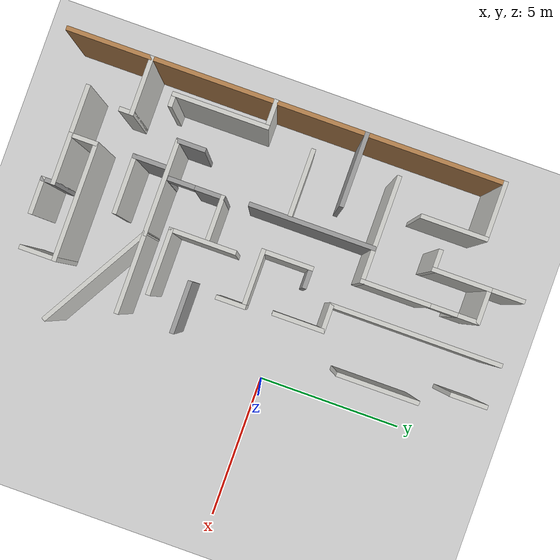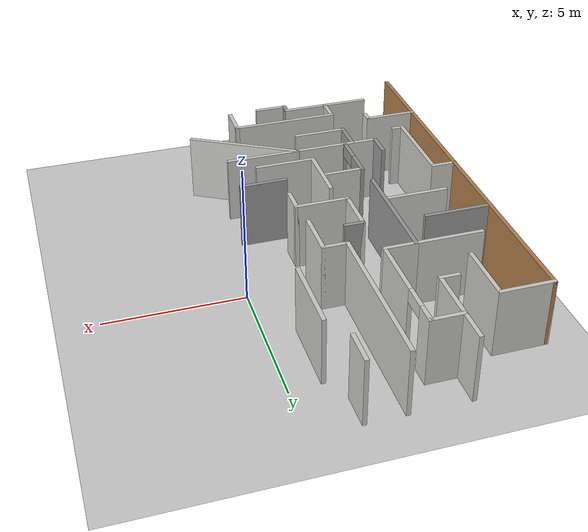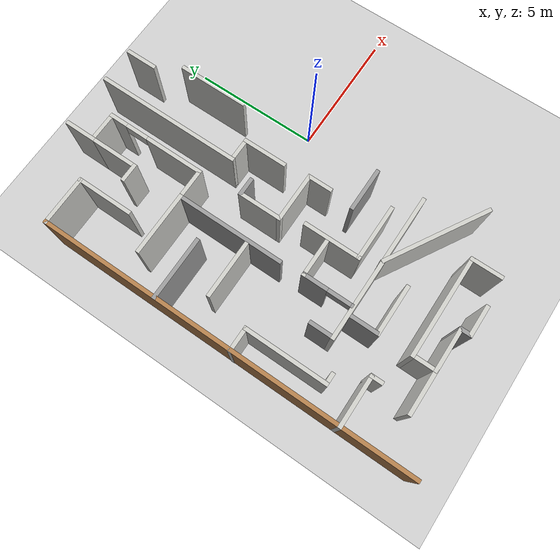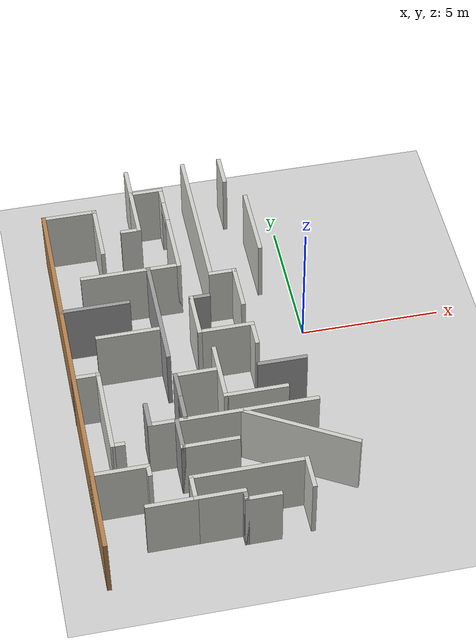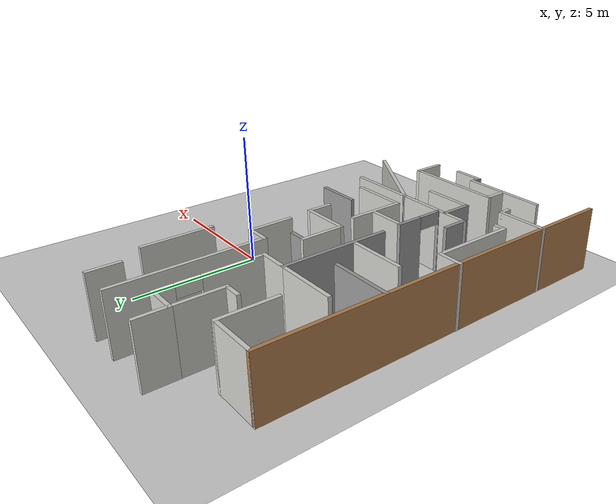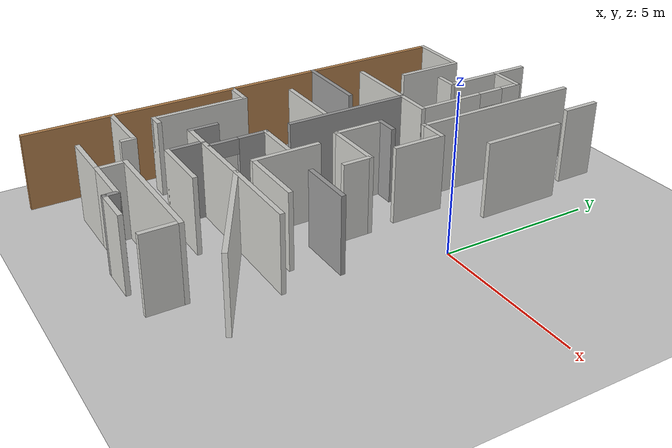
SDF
<sdf version="1.7">
 <world name="default">
  <model name="ground_plane">
   <static>1</static>
   <link name="link">
    <collision name="collision">
     <geometry><plane><normal>0 0 1</normal><size>100 100</size></plane></geometry>
     <surface>
      <contact><collide_bitmask>65535</collide_bitmask></contact>
      <friction><ode><mu>100</mu><mu2>50</mu2></ode></friction>
     </surface>
    </collision>
    <visual name="visual">
     <cast_shadows>0</cast_shadows>
     <geometry><plane><normal>0 0 1</normal><size>100 100</size></plane></geometry>
     <material>
      <script><uri>file://media/materials/scripts/gazebo.material</uri><name>Gazebo/Grey</name></script>
     </material>
    </visual>
   </link>
  </model>
  <model name="maze">
   <pose>-0.272391 -1.26791 0 0 -0 0</pose>
   <link name="Wall_10">
    <collision name="Wall_10_Collision">
     <geometry><box><size>2 0.15 2.5</size></box></geometry>
     <pose>0 0 1.25 0 -0 0</pose>
    </collision>
    <visual name="Wall_10_Visual">
     <pose>0 0 1.25 0 -0 0</pose>
     <geometry><box><size>2 0.15 2.5</size></box></geometry>
     <material>
      <script><uri>file://media/materials/scripts/gazebo.material</uri><name>Gazebo/CeilingTiled</name></script>
      <ambient>1 1 1 1</ambient>
     </material>
     <meta><layer>0</layer></meta>
    </visual>
    <pose>-7.369 6.425 0 0 -0 0</pose>
   </link>
   <link name="Wall_103">
    <collision name="Wall_103_Collision">
     <geometry><box><size>2.75 0.15 2.5</size></box></geometry>
     <pose>0 0 1.25 0 -0 0</pose>
    </collision>
    <visual name="Wall_103_Visual">
     <pose>0 0 1.25 0 -0 0</pose>
     <geometry><box><size>2.75 0.15 2.5</size></box></geometry>
     <material>
      <script><uri>file://media/materials/scripts/gazebo.material</uri><name>Gazebo/CeilingTiled</name></script>
      <ambient>1 1 1 1</ambient>
     </material>
     <meta><layer>0</layer></meta>
    </visual>
    <pose>-0.877462 4.79124 0 0 -0 -1.5708</pose>
   </link>
   <link name="Wall_11">
    <collision name="Wall_11_Collision">
     <geometry><box><size>2.25 0.15 2.5</size></box></geometry>
     <pose>0 0 1.25 0 -0 0</pose>
    </collision>
    <visual name="Wall_11_Visual">
     <pose>0 0 1.25 0 -0 0</pose>
     <geometry><box><size>2.25 0.15 2.5</size></box></geometry>
     <material>
      <script><uri>file://media/materials/scripts/gazebo.material</uri><name>Gazebo/CeilingTiled</name></script>
      <ambient>1 1 1 1</ambient>
     </material>
     <meta><layer>0</layer></meta>
    </visual>
    <pose>-6.444 5.375 0 0 -0 -1.5708</pose>
   </link>
   <link name="Wall_119">
    <collision name="Wall_119_Collision">
     <geometry><box><size>5.75 0.15 2.5</size></box></geometry>
     <pose>0 0 1.25 0 -0 0</pose>
    </collision>
    <visual name="Wall_119_Visual">
     <pose>0 0 1.25 0 -0 0</pose>
     <geometry><box><size>5.75 0.15 2.5</size></box></geometry>
     <material>
      <script><uri>file://media/materials/scripts/gazebo.material</uri><name>Gazebo/CeilingTiled</name></script>
      <ambient>1 1 1 1</ambient>
     </material>
     <meta><layer>0</layer></meta>
    </visual>
    <pose>-2.85397 5.35668 0 0 -0 -1.5708</pose>
   </link>
   <link name="Wall_120">
    <collision name="Wall_120_Collision">
     <geometry><box><size>1 0.15 2.5</size></box></geometry>
     <pose>0 0 1.25 0 -0 0</pose>
    </collision>
    <visual name="Wall_120_Visual">
     <pose>0 0 1.25 0 -0 0</pose>
     <geometry><box><size>1 0.15 2.5</size></box></geometry>
     <material>
      <script><uri>file://media/materials/scripts/gazebo.material</uri><name>Gazebo/CeilingTiled</name></script>
      <ambient>1 1 1 1</ambient>
     </material>
     <meta><layer>0</layer></meta>
    </visual>
    <pose>-2.42897 2.55668 0 0 -0 0</pose>
   </link>
   <link name="Wall_121">
    <collision name="Wall_121_Collision">
     <geometry><box><size>1.75 0.15 2.5</size></box></geometry>
     <pose>0 0 1.25 0 -0 0</pose>
    </collision>
    <visual name="Wall_121_Visual">
     <pose>0 0 1.25 0 -0 0</pose>
     <geometry><box><size>1.75 0.15 2.5</size></box></geometry>
     <material>
      <script><uri>file://media/materials/scripts/gazebo.material</uri><name>Gazebo/CeilingTiled</name></script>
      <ambient>1 1 1 1</ambient>
     </material>
     <meta><layer>0</layer></meta>
    </visual>
    <pose>-2.00397 1.75668 0 0 -0 -1.5708</pose>
   </link>
   <link name="Wall_123">
    <collision name="Wall_123_Collision">
     <geometry><box><size>1.25 0.15 2.5</size></box></geometry>
     <pose>0 0 1.25 0 -0 0</pose>
    </collision>
    <visual name="Wall_123_Visual">
     <pose>0 0 1.25 0 -0 0</pose>
     <geometry><box><size>1.25 0.15 2.5</size></box></geometry>
     <material>
      <script><uri>file://media/materials/scripts/gazebo.material</uri><name>Gazebo/CeilingTiled</name></script>
      <ambient>1 1 1 1</ambient>
     </material>
     <meta><layer>0</layer></meta>
    </visual>
    <pose>-1.47333 7.60546 0 0 -0 -1.5708</pose>
   </link>
   <link name="Wall_127">
    <collision name="Wall_127_Collision">
     <geometry><box><size>1.25 0.15 2.5</size></box></geometry>
     <pose>0 0 1.25 0 -0 0</pose>
    </collision>
    <visual name="Wall_127_Visual">
     <pose>0 0 1.25 0 -0 0</pose>
     <geometry><box><size>1.25 0.15 2.5</size></box></geometry>
     <material>
      <script><uri>file://media/materials/scripts/gazebo.material</uri><name>Gazebo/CeilingTiled</name></script>
      <ambient>1 1 1 1</ambient>
     </material>
     <meta><layer>0</layer></meta>
    </visual>
    <pose>-4.98611 7.61136 0 0 -0 -1.5708</pose>
   </link>
   <link name="Wall_128">
    <collision name="Wall_128_Collision">
     <geometry><box><size>1.25 0.15 2.5</size></box></geometry>
     <pose>0 0 1.25 0 -0 0</pose>
    </collision>
    <visual name="Wall_128_Visual">
     <pose>0 0 1.25 0 -0 0</pose>
     <geometry><box><size>1.25 0.15 2.5</size></box></geometry>
     <material>
      <script><uri>file://media/materials/scripts/gazebo.material</uri><name>Gazebo/CeilingTiled</name></script>
      <ambient>1 1 1 1</ambient>
     </material>
     <meta><layer>0</layer></meta>
    </visual>
    <pose>-4.43611 7.06136 0 0 -0 0</pose>
   </link>
   <link name="Wall_129">
    <pose>-3.88611 5.13636 0 0 -0 -1.5708</pose>
    <visual name="Wall_129_Visual_0">
     <pose>-1.62336 0 1.25 0 -0 0</pose>
     <geometry><box><size>0.753273 0.15 2.5</size></box></geometry>
     <material>
      <script><uri>file://media/materials/scripts/gazebo.material</uri><name>Gazebo/CeilingTiled</name></script>
      <ambient>1 1 1 1</ambient>
     </material>
     <meta><layer>0</layer></meta>
    </visual>
    <collision name="Wall_129_Collision_0">
     <geometry><box><size>0.753273 0.15 2.5</size></box></geometry>
     <pose>-1.62336 0 1.25 0 -0 0</pose>
    </collision>
    <visual name="Wall_129_Visual_1">
     <pose>0.826636 0 1.25 0 -0 0</pose>
     <geometry><box><size>2.34673 0.15 2.5</size></box></geometry>
     <material>
      <script><uri>file://media/materials/scripts/gazebo.material</uri><name>Gazebo/CeilingTiled</name></script>
      <ambient>1 1 1 1</ambient>
     </material>
     <meta><layer>0</layer></meta>
    </visual>
    <collision name="Wall_129_Collision_1">
     <geometry><box><size>2.34673 0.15 2.5</size></box></geometry>
     <pose>0.826636 0 1.25 0 -0 0</pose>
    </collision>
    <visual name="Wall_129_Visual_2">
     <pose>-0.796727 0 2.25 0 -0 0</pose>
     <geometry><box><size>0.9 0.15 0.5</size></box></geometry>
     <material>
      <script><uri>file://media/materials/scripts/gazebo.material</uri><name>Gazebo/CeilingTiled</name></script>
      <ambient>1 1 1 1</ambient>
     </material>
     <meta><layer>0</layer></meta>
    </visual>
    <collision name="Wall_129_Collision_2">
     <geometry><box><size>0.9 0.15 0.5</size></box></geometry>
     <pose>-0.796727 0 2.25 0 -0 0</pose>
    </collision>
   </link>
   <link name="Wall_130">
    <collision name="Wall_130_Collision">
     <geometry><box><size>1.25 0.15 2.5</size></box></geometry>
     <pose>0 0 1.25 0 -0 0</pose>
    </collision>
    <visual name="Wall_130_Visual">
     <pose>0 0 1.25 0 -0 0</pose>
     <geometry><box><size>1.25 0.15 2.5</size></box></geometry>
     <material>
      <script><uri>file://media/materials/scripts/gazebo.material</uri><name>Gazebo/CeilingTiled</name></script>
      <ambient>1 1 1 1</ambient>
     </material>
     <meta><layer>0</layer></meta>
    </visual>
    <pose>-4.43611 3.21136 0 0 -0 3.14159</pose>
   </link>
   <link name="Wall_131">
    <collision name="Wall_131_Collision">
     <geometry><box><size>4.25 0.15 2.5</size></box></geometry>
     <pose>0 0 1.25 0 -0 0</pose>
    </collision>
    <visual name="Wall_131_Visual">
     <pose>0 0 1.25 0 -0 0</pose>
     <geometry><box><size>4.25 0.15 2.5</size></box></geometry>
     <material>
      <script><uri>file://media/materials/scripts/gazebo.material</uri><name>Gazebo/Grey</name></script>
      <ambient>1 1 1 1</ambient>
     </material>
     <meta><layer>0</layer></meta>
    </visual>
    <pose>-4.98611 1.16136 0 0 -0 -1.5708</pose>
   </link>
   <link name="Wall_133">
    <collision name="Wall_133_Collision">
     <geometry><box><size>1 0.15 2.5</size></box></geometry>
     <pose>0 0 1.25 0 -0 0</pose>
    </collision>
    <visual name="Wall_133_Visual">
     <pose>0 0 1.25 0 -0 0</pose>
     <geometry><box><size>1 0.15 2.5</size></box></geometry>
     <material>
      <script><uri>file://media/materials/scripts/gazebo.material</uri><name>Gazebo/CeilingTiled</name></script>
      <ambient>1 1 1 1</ambient>
     </material>
     <meta><layer>0</layer></meta>
    </visual>
    <pose>-1.88611 -0.46364 0 0 -0 1.5708</pose>
   </link>
   <link name="Wall_134">
    <collision name="Wall_134_Collision">
     <geometry><box><size>2 0.15 2.5</size></box></geometry>
     <pose>0 0 1.25 0 -0 0</pose>
    </collision>
    <visual name="Wall_134_Visual">
     <pose>0 0 1.25 0 -0 0</pose>
     <geometry><box><size>2 0.15 2.5</size></box></geometry>
     <material>
      <script><uri>file://media/materials/scripts/gazebo.material</uri><name>Gazebo/CeilingTiled</name></script>
      <ambient>1 1 1 1</ambient>
     </material>
     <meta><layer>0</layer></meta>
    </visual>
    <pose>-2.81111 -0.03864 0 0 -0 3.14159</pose>
   </link>
   <link name="Wall_135">
    <collision name="Wall_135_Collision">
     <geometry><box><size>1.75 0.15 2.5</size></box></geometry>
     <pose>0 0 1.25 0 -0 0</pose>
    </collision>
    <visual name="Wall_135_Visual">
     <pose>0 0 1.25 0 -0 0</pose>
     <geometry><box><size>1.75 0.15 2.5</size></box></geometry>
     <material>
      <script><uri>file://media/materials/scripts/gazebo.material</uri><name>Gazebo/CeilingTiled</name></script>
      <ambient>1 1 1 1</ambient>
     </material>
     <meta><layer>0</layer></meta>
    </visual>
    <pose>-3.73611 0.76136 0 0 -0 1.5708</pose>
   </link>
   <link name="Wall_136">
    <collision name="Wall_136_Collision">
     <geometry><box><size>0.75 0.15 2.5</size></box></geometry>
     <pose>0 0 1.25 0 -0 0</pose>
    </collision>
    <visual name="Wall_136_Visual">
     <pose>0 0 1.25 0 -0 0</pose>
     <geometry><box><size>0.75 0.15 2.5</size></box></geometry>
     <material>
      <script><uri>file://media/materials/scripts/gazebo.material</uri><name>Gazebo/Grey</name></script>
      <ambient>1 1 1 1</ambient>
     </material>
     <meta><layer>0</layer></meta>
    </visual>
    <pose>-3.43611 1.56136 0 0 -0 0</pose>
   </link>
   <link name="Wall_138">
    <collision name="Wall_138_Collision">
     <geometry><box><size>2.75 0.15 2.5</size></box></geometry>
     <pose>0 0 1.25 0 -0 0</pose>
    </collision>
    <visual name="Wall_138_Visual">
     <pose>0 0 1.25 0 -0 0</pose>
     <geometry><box><size>2.75 0.15 2.5</size></box></geometry>
     <material>
      <script><uri>file://media/materials/scripts/gazebo.material</uri><name>Gazebo/CeilingTiled</name></script>
      <ambient>1 1 1 1</ambient>
     </material>
     <meta><layer>0</layer></meta>
    </visual>
    <pose>-1.71262 -3.72952 0 0 -0 0</pose>
   </link>
   <link name="Wall_140">
    <collision name="Wall_140_Collision">
     <geometry><box><size>1.75 0.15 2.5</size></box></geometry>
     <pose>0 0 1.25 0 -0 0</pose>
    </collision>
    <visual name="Wall_140_Visual">
     <pose>0 0 1.25 0 -0 0</pose>
     <geometry><box><size>1.75 0.15 2.5</size></box></geometry>
     <material>
      <script><uri>file://media/materials/scripts/gazebo.material</uri><name>Gazebo/Grey</name></script>
      <ambient>1 1 1 1</ambient>
     </material>
     <meta><layer>0</layer></meta>
    </visual>
    <pose>-1.21262 -1.87952 0 0 -0 3.14159</pose>
   </link>
   <link name="Wall_143">
    <collision name="Wall_143_Collision">
     <geometry><box><size>2.25 0.15 2.5</size></box></geometry>
     <pose>0 0 1.25 0 -0 0</pose>
    </collision>
    <visual name="Wall_143_Visual">
     <pose>0 0 1.25 0 -0 0</pose>
     <geometry><box><size>2.25 0.15 2.5</size></box></geometry>
     <material>
      <script><uri>file://media/materials/scripts/gazebo.material</uri><name>Gazebo/CeilingTiled</name></script>
      <ambient>1 1 1 1</ambient>
     </material>
     <meta><layer>0</layer></meta>
    </visual>
    <pose>-3.39598 -1.94349 0 0 -0 -1.5708</pose>
   </link>
   <link name="Wall_144">
    <collision name="Wall_144_Collision">
     <geometry><box><size>2.25 0.15 2.5</size></box></geometry>
     <pose>0 0 1.25 0 -0 0</pose>
    </collision>
    <visual name="Wall_144_Visual">
     <pose>0 0 1.25 0 -0 0</pose>
     <geometry><box><size>2.25 0.15 2.5</size></box></geometry>
     <material>
      <script><uri>file://media/materials/scripts/gazebo.material</uri><name>Gazebo/CeilingTiled</name></script>
      <ambient>1 1 1 1</ambient>
     </material>
     <meta><layer>0</layer></meta>
    </visual>
    <pose>-2.34598 -2.99349 0 0 -0 0</pose>
   </link>
   <link name="Wall_147">
    <pose>-4.89589 -2.72814 0 0 -0 1.5708</pose>
    <visual name="Wall_147_Visual_0">
     <pose>-0.954493 0 1.25 0 -0 0</pose>
     <geometry><box><size>0.091015 0.15 2.5</size></box></geometry>
     <material>
      <script><uri>file://media/materials/scripts/gazebo.material</uri><name>Gazebo/Grey</name></script>
      <ambient>1 1 1 1</ambient>
     </material>
     <meta><layer>0</layer></meta>
    </visual>
    <collision name="Wall_147_Collision_0">
     <geometry><box><size>0.091015 0.15 2.5</size></box></geometry>
     <pose>-0.954493 0 1.25 0 -0 0</pose>
    </collision>
    <visual name="Wall_147_Visual_1">
     <pose>0.495507 0 1.25 0 -0 0</pose>
     <geometry><box><size>1.00899 0.15 2.5</size></box></geometry>
     <material>
      <script><uri>file://media/materials/scripts/gazebo.material</uri><name>Gazebo/Grey</name></script>
      <ambient>1 1 1 1</ambient>
     </material>
     <meta><layer>0</layer></meta>
    </visual>
    <collision name="Wall_147_Collision_1">
     <geometry><box><size>1.00899 0.15 2.5</size></box></geometry>
     <pose>0.495507 0 1.25 0 -0 0</pose>
    </collision>
    <visual name="Wall_147_Visual_2">
     <pose>-0.458985 0 2.25 0 -0 0</pose>
     <geometry><box><size>0.9 0.15 0.5</size></box></geometry>
     <material>
      <script><uri>file://media/materials/scripts/gazebo.material</uri><name>Gazebo/Grey</name></script>
      <ambient>1 1 1 1</ambient>
     </material>
     <meta><layer>0</layer></meta>
    </visual>
    <collision name="Wall_147_Collision_2">
     <geometry><box><size>0.9 0.15 0.5</size></box></geometry>
     <pose>-0.458985 0 2.25 0 -0 0</pose>
    </collision>
   </link>
   <link name="Wall_148">
    <collision name="Wall_148_Collision">
     <geometry><box><size>1.5 0.15 2.5</size></box></geometry>
     <pose>0 0 1.25 0 -0 0</pose>
    </collision>
    <visual name="Wall_148_Visual">
     <pose>0 0 1.25 0 -0 0</pose>
     <geometry><box><size>1.5 0.15 2.5</size></box></geometry>
     <material>
      <script><uri>file://media/materials/scripts/gazebo.material</uri><name>Gazebo/CeilingTiled</name></script>
      <ambient>1 1 1 1</ambient>
     </material>
     <meta><layer>0</layer></meta>
    </visual>
    <pose>-4.22089 -1.80314 0 0 -0 0</pose>
   </link>
   <link name="Wall_150">
    <collision name="Wall_150_Collision">
     <geometry><box><size>1 0.15 2.5</size></box></geometry>
     <pose>0 0 1.25 0 -0 0</pose>
    </collision>
    <visual name="Wall_150_Visual">
     <pose>0 0 1.25 0 -0 0</pose>
     <geometry><box><size>1 0.15 2.5</size></box></geometry>
     <material>
      <script><uri>file://media/materials/scripts/gazebo.material</uri><name>Gazebo/CeilingTiled</name></script>
      <ambient>1 1 1 1</ambient>
     </material>
     <meta><layer>0</layer></meta>
    </visual>
    <pose>-7.881 -1.23736 0 0 -0 0</pose>
   </link>
   <link name="Wall_151">
    <collision name="Wall_151_Collision">
     <geometry><box><size>3.25 0.15 2.5</size></box></geometry>
     <pose>0 0 1.25 0 -0 0</pose>
    </collision>
    <visual name="Wall_151_Visual">
     <pose>0 0 1.25 0 -0 0</pose>
     <geometry><box><size>3.25 0.15 2.5</size></box></geometry>
     <material>
      <script><uri>file://media/materials/scripts/gazebo.material</uri><name>Gazebo/CeilingTiled</name></script>
      <ambient>1 1 1 1</ambient>
     </material>
     <meta><layer>0</layer></meta>
    </visual>
    <pose>-7.456 -2.78736 0 0 -0 -1.5708</pose>
   </link>
   <link name="Wall_152">
    <collision name="Wall_152_Collision">
     <geometry><box><size>0.5 0.15 2.5</size></box></geometry>
     <pose>0 0 1.25 0 -0 0</pose>
    </collision>
    <visual name="Wall_152_Visual">
     <pose>0 0 1.25 0 -0 0</pose>
     <geometry><box><size>0.5 0.15 2.5</size></box></geometry>
     <material>
      <script><uri>file://media/materials/scripts/gazebo.material</uri><name>Gazebo/CeilingTiled</name></script>
      <ambient>1 1 1 1</ambient>
     </material>
     <meta><layer>0</layer></meta>
    </visual>
    <pose>-7.281 -4.33736 0 0 -0 0</pose>
   </link>
   <link name="Wall_156">
    <collision name="Wall_156_Collision">
     <geometry><box><size>2.25 0.15 2.5</size></box></geometry>
     <pose>0 0 1.25 0 -0 0</pose>
    </collision>
    <visual name="Wall_156_Visual">
     <pose>0 0 1.25 0 -0 0</pose>
     <geometry><box><size>2.25 0.15 2.5</size></box></geometry>
     <material>
      <script><uri>file://media/materials/scripts/gazebo.material</uri><name>Gazebo/CeilingTiled</name></script>
      <ambient>1 1 1 1</ambient>
     </material>
     <meta><layer>0</layer></meta>
    </visual>
    <pose>-6.17489 0.379623 0 0 -0 3.14159</pose>
   </link>
   <link name="Wall_158">
    <collision name="Wall_158_Collision">
     <geometry><box><size>2.5 0.15 2.5</size></box></geometry>
     <pose>0 0 1.25 0 -0 0</pose>
    </collision>
    <visual name="Wall_158_Visual">
     <pose>0 0 1.25 0 -0 0</pose>
     <geometry><box><size>2.5 0.15 2.5</size></box></geometry>
     <material>
      <script><uri>file://media/materials/scripts/gazebo.material</uri><name>Gazebo/Grey</name></script>
      <ambient>1 1 1 1</ambient>
     </material>
     <meta><layer>0</layer></meta>
    </visual>
    <pose>-7.11798 1.80772 0 0 -0 0</pose>
   </link>
   <link name="Wall_160">
    <collision name="Wall_160_Collision">
     <geometry><box><size>2.5 0.15 2.5</size></box></geometry>
     <pose>0 0 1.25 0 -0 0</pose>
    </collision>
    <visual name="Wall_160_Visual">
     <pose>0 0 1.25 0 -0 0</pose>
     <geometry><box><size>2.5 0.15 2.5</size></box></geometry>
     <material>
      <script><uri>file://media/materials/scripts/gazebo.material</uri><name>Gazebo/CeilingTiled</name></script>
      <ambient>1 1 1 1</ambient>
     </material>
     <meta><layer>0</layer></meta>
    </visual>
    <pose>-6.16111 3.21136 0 0 -0 3.14159</pose>
   </link>
   <link name="Wall_162">
    <collision name="Wall_162_Collision">
     <geometry><box><size>2 0.15 2.5</size></box></geometry>
     <pose>0 0 1.25 0 -0 0</pose>
    </collision>
    <visual name="Wall_162_Visual">
     <pose>0 0 1.25 0 -0 0</pose>
     <geometry><box><size>2 0.15 2.5</size></box></geometry>
     <material>
      <script><uri>file://media/materials/scripts/gazebo.material</uri><name>Gazebo/CeilingTiled</name></script>
      <ambient>1 1 1 1</ambient>
     </material>
     <meta><layer>0</layer></meta>
    </visual>
    <pose>-4.98611 6.13636 0 0 -0 -1.5708</pose>
   </link>
   <link name="Wall_163">
    <collision name="Wall_163_Collision">
     <geometry><box><size>0.75 0.15 2.5</size></box></geometry>
     <pose>0 0 1.25 0 -0 0</pose>
    </collision>
    <visual name="Wall_163_Visual">
     <pose>0 0 1.25 0 -0 0</pose>
     <geometry><box><size>0.75 0.15 2.5</size></box></geometry>
     <material>
      <script><uri>file://media/materials/scripts/gazebo.material</uri><name>Gazebo/CeilingTiled</name></script>
      <ambient>1 1 1 1</ambient>
     </material>
     <meta><layer>0</layer></meta>
    </visual>
    <pose>-5.28611 5.21136 0 0 -0 3.14159</pose>
   </link>
   <link name="Wall_75">
    <collision name="Wall_75_Collision">
     <geometry><box><size>4.25 0.15 2.5</size></box></geometry>
     <pose>0 0 1.25 0 -0 0</pose>
    </collision>
    <visual name="Wall_75_Visual">
     <pose>0 0 1.25 0 -0 0</pose>
     <geometry><box><size>4.25 0.15 2.5</size></box></geometry>
     <material>
      <script><uri>file://media/materials/scripts/gazebo.material</uri><name>Gazebo/CeilingTiled</name></script>
      <ambient>1 1 1 1</ambient>
     </material>
     <meta><layer>0</layer></meta>
    </visual>
    <pose>-1.23727 -4.75451 0 0 -0 2.61799</pose>
   </link>
   <link name="Wall_76">
    <collision name="Wall_76_Collision">
     <geometry><box><size>3.25 0.15 2.5</size></box></geometry>
     <pose>0 0 1.25 0 -0 0</pose>
    </collision>
    <visual name="Wall_76_Visual">
     <pose>0 0 1.25 0 -0 0</pose>
     <geometry><box><size>3.25 0.15 2.5</size></box></geometry>
     <material>
      <script><uri>file://media/materials/scripts/gazebo.material</uri><name>Gazebo/CeilingTiled</name></script>
      <ambient>1 1 1 1</ambient>
     </material>
     <meta><layer>0</layer></meta>
    </visual>
    <pose>-4.56262 -3.72952 0 0 -0 3.14159</pose>
   </link>
   <link name="Wall_77">
    <collision name="Wall_77_Collision">
     <geometry><box><size>1 0.15 2.5</size></box></geometry>
     <pose>0 0 1.25 0 -0 0</pose>
    </collision>
    <visual name="Wall_77_Visual">
     <pose>0 0 1.25 0 -0 0</pose>
     <geometry><box><size>1 0.15 2.5</size></box></geometry>
     <material>
      <script><uri>file://media/materials/scripts/gazebo.material</uri><name>Gazebo/Grey</name></script>
      <ambient>1 1 1 1</ambient>
     </material>
     <meta><layer>0</layer></meta>
    </visual>
    <pose>-6.11262 -3.30451 0 0 -0 1.5708</pose>
   </link>
   <link name="Wall_81">
    <collision name="Wall_81_Collision">
     <geometry><box><size>1.25 0.15 2.5</size></box></geometry>
     <pose>0 0 1.25 0 -0 0</pose>
    </collision>
    <visual name="Wall_81_Visual">
     <pose>0 0 1.25 0 -0 0</pose>
     <geometry><box><size>1.25 0.15 2.5</size></box></geometry>
     <material>
      <script><uri>file://media/materials/scripts/gazebo.material</uri><name>Gazebo/CeilingTiled</name></script>
      <ambient>1 1 1 1</ambient>
     </material>
     <meta><layer>0</layer></meta>
    </visual>
    <pose>-1.30818 -6.6815 0 0 -0 1.5708</pose>
   </link>
   <link name="Wall_82">
    <collision name="Wall_82_Collision">
     <geometry><box><size>4 0.15 2.5</size></box></geometry>
     <pose>0 0 1.25 0 -0 0</pose>
    </collision>
    <visual name="Wall_82_Visual">
     <pose>0 0 1.25 0 -0 0</pose>
     <geometry><box><size>4 0.15 2.5</size></box></geometry>
     <material>
      <script><uri>file://media/materials/scripts/gazebo.material</uri><name>Gazebo/CeilingTiled</name></script>
      <ambient>1 1 1 1</ambient>
     </material>
     <meta><layer>0</layer></meta>
    </visual>
    <pose>-3.23318 -6.1315 0 0 -0 3.14159</pose>
   </link>
   <link name="Wall_83">
    <collision name="Wall_83_Collision">
     <geometry><box><size>1 0.15 2.5</size></box></geometry>
     <pose>0 0 1.25 0 -0 0</pose>
    </collision>
    <visual name="Wall_83_Visual">
     <pose>0 0 1.25 0 -0 0</pose>
     <geometry><box><size>1 0.15 2.5</size></box></geometry>
     <material>
      <script><uri>file://media/materials/scripts/gazebo.material</uri><name>Gazebo/CeilingTiled</name></script>
      <ambient>1 1 1 1</ambient>
     </material>
     <meta><layer>0</layer></meta>
    </visual>
    <pose>-5.15818 -6.5565 0 0 -0 -1.5708</pose>
   </link>
   <link name="Wall_84">
    <collision name="Wall_84_Collision">
     <geometry><box><size>1.75 0.15 2.5</size></box></geometry>
     <pose>0 0 1.25 0 -0 0</pose>
    </collision>
    <visual name="Wall_84_Visual">
     <pose>0 0 1.25 0 -0 0</pose>
     <geometry><box><size>1.75 0.15 2.5</size></box></geometry>
     <material>
      <script><uri>file://media/materials/scripts/gazebo.material</uri><name>Gazebo/CeilingTiled</name></script>
      <ambient>1 1 1 1</ambient>
     </material>
     <meta><layer>0</layer></meta>
    </visual>
    <pose>-5.95818 -6.9815 0 0 -0 3.14159</pose>
   </link>
   <link name="Wall_86">
    <collision name="Wall_86_Collision">
     <geometry><box><size>1.75 0.15 2.5</size></box></geometry>
     <pose>0 0 1.25 0 -0 0</pose>
    </collision>
    <visual name="Wall_86_Visual">
     <pose>0 0 1.25 0 -0 0</pose>
     <geometry><box><size>1.75 0.15 2.5</size></box></geometry>
     <material>
      <script><uri>file://media/materials/scripts/gazebo.material</uri><name>Gazebo/CeilingTiled</name></script>
      <ambient>1 1 1 1</ambient>
     </material>
     <meta><layer>0</layer></meta>
    </visual>
    <pose>-4.35818 -6.9815 0 0 -0 0</pose>
   </link>
   <link name="Wall_87">
    <collision name="Wall_87_Collision">
     <geometry><box><size>0.5 0.15 2.5</size></box></geometry>
     <pose>0 0 1.25 0 -0 0</pose>
    </collision>
    <visual name="Wall_87_Visual">
     <pose>0 0 1.25 0 -0 0</pose>
     <geometry><box><size>0.5 0.15 2.5</size></box></geometry>
     <material>
      <script><uri>file://media/materials/scripts/gazebo.material</uri><name>Gazebo/Grey</name></script>
      <ambient>1 1 1 1</ambient>
     </material>
     <meta><layer>0</layer></meta>
    </visual>
    <pose>-3.55818 -7.1565 0 0 -0 -1.5708</pose>
   </link>
   <link name="Wall_88">
    <collision name="Wall_88_Collision">
     <geometry><box><size>1.25 0.15 2.5</size></box></geometry>
     <pose>0 0 1.25 0 -0 0</pose>
    </collision>
    <visual name="Wall_88_Visual">
     <pose>0 0 1.25 0 -0 0</pose>
     <geometry><box><size>1.25 0.15 2.5</size></box></geometry>
     <material>
      <script><uri>file://media/materials/scripts/gazebo.material</uri><name>Gazebo/CeilingTiled</name></script>
      <ambient>1 1 1 1</ambient>
     </material>
     <meta><layer>0</layer></meta>
    </visual>
    <pose>-3.00818 -7.3315 0 0 -0 0</pose>
   </link>
   <link name="Wall_9">
    <collision name="Wall_9_Collision">
     <geometry><box><size>14.75 0.15 2.5</size></box></geometry>
     <pose>0 0 1.25 0 -0 0</pose>
    </collision>
    <visual name="Wall_9_Visual">
     <pose>0 0 1.25 0 -0 0</pose>
     <geometry><box><size>14.75 0.15 2.5</size></box></geometry>
     <material>
      <script><uri>file://media/materials/scripts/gazebo.material</uri><name>Gazebo/Wood</name></script>
      <ambient>1 1 1 1</ambient>
     </material>
     <meta><layer>0</layer></meta>
    </visual>
    <pose>-8.294 -0.875 0 0 -0 1.5708</pose>
   </link>
   <link name="Wall_91">
    <collision name="Wall_91_Collision">
     <geometry><box><size>1.25 0.15 2.5</size></box></geometry>
     <pose>0 0 1.25 0 -0 0</pose>
    </collision>
    <visual name="Wall_91_Visual">
     <pose>0 0 1.25 0 -0 0</pose>
     <geometry><box><size>1.25 0.15 2.5</size></box></geometry>
     <material>
      <script><uri>file://media/materials/scripts/gazebo.material</uri><name>Gazebo/Grey</name></script>
      <ambient>1 1 1 1</ambient>
     </material>
     <meta><layer>0</layer></meta>
    </visual>
    <pose>-5.19539 -4.29959 0 0 -0 -1.5708</pose>
   </link>
   <link name="Wall_92">
    <collision name="Wall_92_Collision">
     <geometry><box><size>2 0.15 2.5</size></box></geometry>
     <pose>0 0 1.25 0 -0 0</pose>
    </collision>
    <visual name="Wall_92_Visual">
     <pose>0 0 1.25 0 -0 0</pose>
     <geometry><box><size>2 0.15 2.5</size></box></geometry>
     <material>
      <script><uri>file://media/materials/scripts/gazebo.material</uri><name>Gazebo/CeilingTiled</name></script>
      <ambient>1 1 1 1</ambient>
     </material>
     <meta><layer>0</layer></meta>
    </visual>
    <pose>-4.27039 -4.84959 0 0 -0 0</pose>
   </link>
   <link name="Wall_95">
    <collision name="Wall_95_Collision">
     <geometry><box><size>2 0.15 2.5</size></box></geometry>
     <pose>0 0 1.25 0 -0 0</pose>
    </collision>
    <visual name="Wall_95_Visual">
     <pose>0 0 1.25 0 -0 0</pose>
     <geometry><box><size>2 0.15 2.5</size></box></geometry>
     <material>
      <script><uri>file://media/materials/scripts/gazebo.material</uri><name>Gazebo/CeilingTiled</name></script>
      <ambient>1 1 1 1</ambient>
     </material>
     <meta><layer>0</layer></meta>
    </visual>
    <pose>-7.36954 -5.39407 0 0 -0 0</pose>
   </link>
   <link name="Wall_96">
    <collision name="Wall_96_Collision">
     <geometry><box><size>0.5 0.15 2.5</size></box></geometry>
     <pose>0 0 1.25 0 -0 0</pose>
    </collision>
    <visual name="Wall_96_Visual">
     <pose>0 0 1.25 0 -0 0</pose>
     <geometry><box><size>0.5 0.15 2.5</size></box></geometry>
     <material>
      <script><uri>file://media/materials/scripts/gazebo.material</uri><name>Gazebo/CeilingTiled</name></script>
      <ambient>1 1 1 1</ambient>
     </material>
     <meta><layer>0</layer></meta>
    </visual>
    <pose>-6.44454 -5.56907 0 0 -0 -1.5708</pose>
   </link>
   <static>1</static>
  </model>
 </world>
</sdf>
